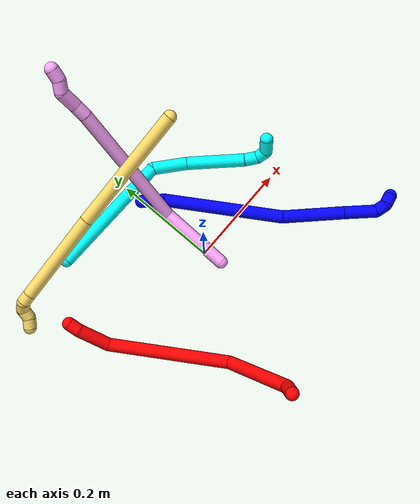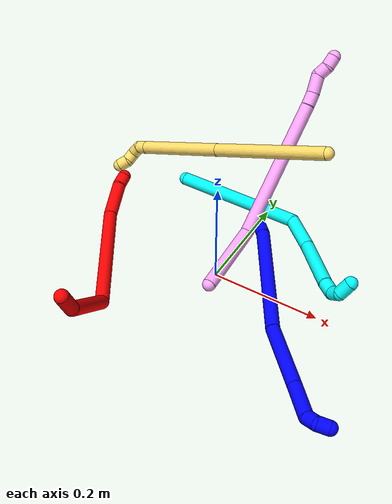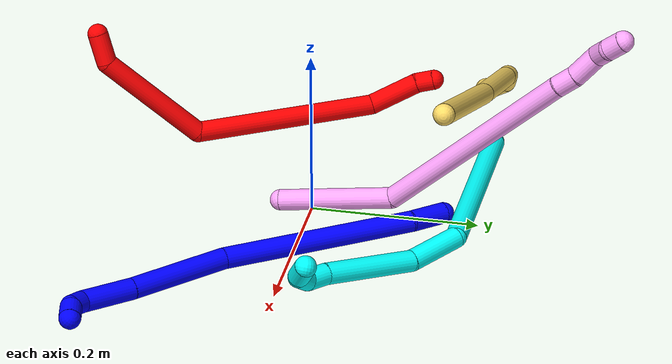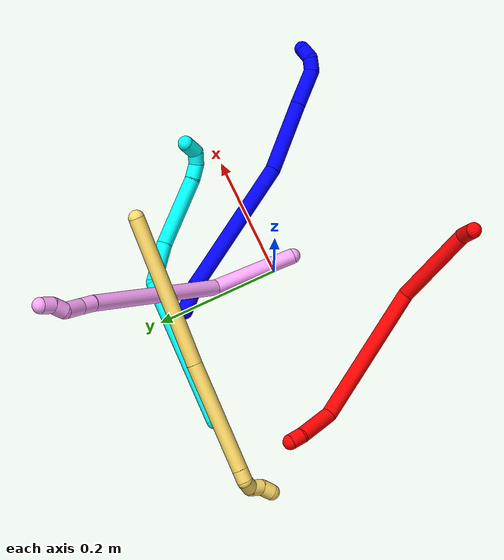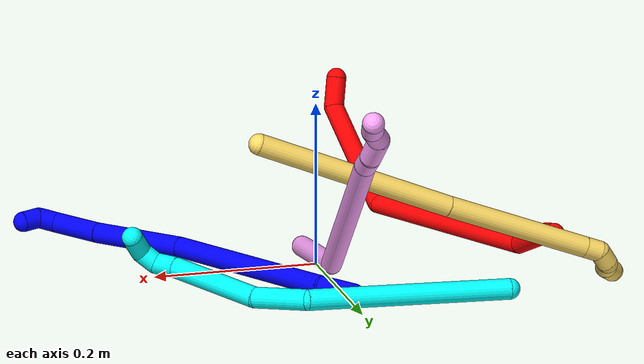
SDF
<sdf version="1.7">
 <world name="default">
  <plugin name="TubeGeneratorPlugin" filename="libtube_generator_plugin.so"/>
  <model name="photoneo_s_sensor">
   <static>1</static>
   <pose>0 0 2 1.57079 1.57079 3.14159</pose>
   <link name="link">
    <inertial><mass>0.1</mass></inertial>
    <sensor name="sensor" type="depth">
     <update_rate>30</update_rate>
     <camera>
      <horizontal_fov>1.22</horizontal_fov>
      <image><width>1920</width><height>1200</height><format>B8G8R8</format></image>
      <clip><near>0.1</near><far>4</far></clip>
      <depth_camera><output>points</output></depth_camera>
     </camera>
     <plugin name="camera_plugin" filename="libgazebo_ros_depth_camera.so">
      <baseline>0.2</baseline>
      <alwaysOn>1</alwaysOn>
      <updateRate>0.0</updateRate>
      <cameraName>camera_ir</cameraName>
      <imageTopicName>/camera/color/image_raw</imageTopicName>
      <cameraInfoTopicName>/camera/color/camera_info</cameraInfoTopicName>
      <depthImageTopicName>/camera/depth/image_raw</depthImageTopicName>
      <depthImageCameraInfoTopicName>/camera/depth/camera_info</depthImageCameraInfoTopicName>
      <pointCloudTopicName>/camera/depth/points</pointCloudTopicName>
      <frameName>fr_optical</frameName>
      <pointCloudCutoff>0.1</pointCloudCutoff>
      <pointCloudCutoffMax>2.0</pointCloudCutoffMax>
      <distortionK1>0</distortionK1>
      <distortionK2>0</distortionK2>
      <distortionK3>0</distortionK3>
      <distortionT1>0</distortionT1>
      <distortionT2>0</distortionT2>
      <CxPrime>0</CxPrime>
      <Cx>0</Cx>
      <Cy>0</Cy>
      <focalLength>0</focalLength>
      <hackBaseline>0</hackBaseline>
     </plugin>
    </sensor>
   </link>
  </model>
  <gravity>0 0 -9.8</gravity>
  <magnetic_field>6e-06 2.3e-05 -4.2e-05</magnetic_field>
  <atmosphere type="adiabatic"/>
  <physics name="default_physics" default="0" type="ode">
   <max_step_size>0.003</max_step_size>
   <real_time_factor>1</real_time_factor>
   <real_time_update_rate>1000</real_time_update_rate>
   <max_contacts>10000</max_contacts>
   <ode>
    <solver>
     <type>quick</type>
     <iters>100</iters>
     <sor>1.3</sor>
     <use_dynamic_moi_rescaling>0</use_dynamic_moi_rescaling>
    </solver>
    <constraints>
     <contact_max_correcting_vel>0</contact_max_correcting_vel>
     <contact_surface_layer>0.001</contact_surface_layer>
     <cfm>0</cfm>
     <erp>0.2</erp>
    </constraints>
   </ode>
  </physics>
  <scene><ambient>0.4 0.4 0.4 1</ambient><background>0.7 0.7 0.7 1</background><shadows>0</shadows></scene>
  <audio><device>default</device></audio>
  <spherical_coordinates>
   <surface_model>EARTH_WGS84</surface_model>
   <latitude_deg>0</latitude_deg>
   <longitude_deg>0</longitude_deg>
   <elevation>0</elevation>
   <heading_deg>0</heading_deg>
  </spherical_coordinates>
  <model name="bin">
   <static>1</static>
   <link name="bottom">
    <collision name="collision-bottom">
     <pose>0 0 -0.01 0 -0 0</pose>
     <geometry><box><size>0.8 0.6 0.02</size></box></geometry>
     <surface>
      <friction><ode><mu>100</mu><mu2>100</mu2></ode></friction>
      <contact><collide_bitmask>65535</collide_bitmask></contact>
     </surface>
    </collision>
   </link>
   <link name="west_wall">
    <collision name="collision-west_wall">
     <pose>-0.41 0 0.1 0 -0 0</pose>
     <geometry><box><size>0.02 0.6 0.2</size></box></geometry>
     <surface>
      <friction><ode><mu>100</mu><mu2>100</mu2></ode></friction>
      <contact><collide_bitmask>65535</collide_bitmask></contact>
     </surface>
    </collision>
   </link>
   <link name="east_wall">
    <collision name="collision-east_wall">
     <pose>0.41 0 0.1 0 -0 0</pose>
     <geometry><box><size>0.02 0.6 0.2</size></box></geometry>
     <surface>
      <friction><ode><mu>100</mu><mu2>100</mu2></ode></friction>
      <contact><collide_bitmask>65535</collide_bitmask></contact>
     </surface>
    </collision>
   </link>
   <link name="south_wall">
    <collision name="collision-south_wall">
     <pose>0 -0.31 0.1 0 -0 0</pose>
     <geometry><box><size>0.8 0.02 0.2</size></box></geometry>
     <surface>
      <friction><ode><mu>100</mu><mu2>100</mu2></ode></friction>
      <contact><collide_bitmask>65535</collide_bitmask></contact>
     </surface>
    </collision>
   </link>
   <link name="north_wall">
    <collision name="collision-north_wall">
     <pose>0 0.31 0.1 0 -0 0</pose>
     <geometry><box><size>0.8 0.02 0.2</size></box></geometry>
     <surface>
      <friction><ode><mu>100</mu><mu2>100</mu2></ode></friction>
      <contact><collide_bitmask>65535</collide_bitmask></contact>
     </surface>
    </collision>
   </link>
  </model>
  <model name="1">
   <static>0</static>
   <link name="1">
    <collision name="collision-cylinder-e_1_1_4">
     <pose>0.014625 -0.016737 -0.002079 1.69438 0.714352 0.799344</pose>
     <geometry><cylinder><radius>0.0125</radius><length>0.044647</length></cylinder></geometry>
     <surface>
      <friction><ode><mu>1.16</mu><mu2>1.16</mu2><slip1>0</slip1><slip2>0</slip2></ode></friction>
      <contact><ode><kp>1e+06</kp><kd>1</kd><max_vel>0</max_vel><min_depth>0.001</min_depth></ode></contact>
     </surface>
    </collision>
    <visual name="visual-cylinder-e_1_1_4">
     <pose>0.014625 -0.016737 -0.002079 1.69438 0.714352 0.799344</pose>
     <geometry><cylinder><radius>0.0125</radius><length>0.044647</length></cylinder></geometry>
     <material><ambient>0 0 1 1</ambient></material>
    </visual>
    <collision name="collision-cylinder-e_2_4_5">
     <pose>0.093287 -0.124477 -0.034724 1.89484 0.588281 0.797476</pose>
     <geometry><cylinder><radius>0.0125</radius><length>0.230795</length></cylinder></geometry>
     <surface>
      <friction><ode><mu>1.16</mu><mu2>1.16</mu2><slip1>0</slip1><slip2>0</slip2></ode></friction>
      <contact><ode><kp>1e+06</kp><kd>1</kd><max_vel>0</max_vel><min_depth>0.001</min_depth></ode></contact>
     </surface>
    </collision>
    <visual name="visual-cylinder-e_2_4_5">
     <pose>0.093287 -0.124477 -0.034724 1.89484 0.588281 0.797476</pose>
     <geometry><cylinder><radius>0.0125</radius><length>0.230795</length></cylinder></geometry>
     <material><ambient>0 0 1 1</ambient></material>
    </visual>
    <collision name="collision-cylinder-e_3_5_6">
     <pose>0.198471 -0.25782 -0.072397 1.7371 0.764148 0.886713</pose>
     <geometry><cylinder><radius>0.0125</radius><length>0.118933</length></cylinder></geometry>
     <surface>
      <friction><ode><mu>1.16</mu><mu2>1.16</mu2><slip1>0</slip1><slip2>0</slip2></ode></friction>
      <contact><ode><kp>1e+06</kp><kd>1</kd><max_vel>0</max_vel><min_depth>0.001</min_depth></ode></contact>
     </surface>
    </collision>
    <visual name="visual-cylinder-e_3_5_6">
     <pose>0.198471 -0.25782 -0.072397 1.7371 0.764148 0.886713</pose>
     <geometry><cylinder><radius>0.0125</radius><length>0.118933</length></cylinder></geometry>
     <material><ambient>0 0 1 1</ambient></material>
    </visual>
    <collision name="collision-cylinder-e_4_6_7">
     <pose>0.260115 -0.323899 -0.082606 1.70072 0.708101 0.797063</pose>
     <geometry><cylinder><radius>0.0125</radius><length>0.063032</length></cylinder></geometry>
     <surface>
      <friction><ode><mu>1.16</mu><mu2>1.16</mu2><slip1>0</slip1><slip2>0</slip2></ode></friction>
      <contact><ode><kp>1e+06</kp><kd>1</kd><max_vel>0</max_vel><min_depth>0.001</min_depth></ode></contact>
     </surface>
    </collision>
    <visual name="visual-cylinder-e_4_6_7">
     <pose>0.260115 -0.323899 -0.082606 1.70072 0.708101 0.797063</pose>
     <geometry><cylinder><radius>0.0125</radius><length>0.063032</length></cylinder></geometry>
     <material><ambient>0 0 1 1</ambient></material>
    </visual>
    <collision name="collision-cylinder-e_5_7_8">
     <pose>0.288475 -0.353495 -0.081347 0.930962 0.822228 0.431151</pose>
     <geometry><cylinder><radius>0.0125</radius><length>0.021463</length></cylinder></geometry>
     <surface>
      <friction><ode><mu>1.16</mu><mu2>1.16</mu2><slip1>0</slip1><slip2>0</slip2></ode></friction>
      <contact><ode><kp>1e+06</kp><kd>1</kd><max_vel>0</max_vel><min_depth>0.001</min_depth></ode></contact>
     </surface>
    </collision>
    <visual name="visual-cylinder-e_5_7_8">
     <pose>0.288475 -0.353495 -0.081347 0.930962 0.822228 0.431151</pose>
     <geometry><cylinder><radius>0.0125</radius><length>0.021463</length></cylinder></geometry>
     <material><ambient>0 0 1 1</ambient></material>
    </visual>
    <collision name="collision-cylinder-e_6_8_2">
     <pose>0.305788 -0.358827 -0.072292 -0.111823 1.10731 -0.069167</pose>
     <geometry><cylinder><radius>0.0125</radius><length>0.021131</length></cylinder></geometry>
     <surface>
      <friction><ode><mu>1.16</mu><mu2>1.16</mu2><slip1>0</slip1><slip2>0</slip2></ode></friction>
      <contact><ode><kp>1e+06</kp><kd>1</kd><max_vel>0</max_vel><min_depth>0.001</min_depth></ode></contact>
     </surface>
    </collision>
    <visual name="visual-cylinder-e_6_8_2">
     <pose>0.305788 -0.358827 -0.072292 -0.111823 1.10731 -0.069167</pose>
     <geometry><cylinder><radius>0.0125</radius><length>0.021131</length></cylinder></geometry>
     <material><ambient>0 0 1 1</ambient></material>
    </visual>
    <collision name="collision-sphere-2">
     <pose>0.315239 -0.3583 -0.067598 0 -0 0</pose>
     <geometry><sphere><radius>0.0125</radius></sphere></geometry>
     <surface>
      <friction><ode><mu>1.16</mu><mu2>1.16</mu2><slip1>0</slip1><slip2>0</slip2></ode></friction>
      <contact><ode><kp>1e+06</kp><kd>1</kd><max_vel>0</max_vel><min_depth>0.001</min_depth></ode></contact>
     </surface>
    </collision>
    <visual name="visual-sphere-2">
     <pose>0.315239 -0.3583 -0.067598 0 -0 0</pose>
     <geometry><sphere><radius>0.0125</radius></sphere></geometry>
     <material><ambient>0 0 1 1</ambient></material>
    </visual>
    <collision name="collision-sphere-4">
     <pose>0.029249 -0.033474 -0.004158 0 -0 0</pose>
     <geometry><sphere><radius>0.0125</radius></sphere></geometry>
     <surface>
      <friction><ode><mu>1.16</mu><mu2>1.16</mu2><slip1>0</slip1><slip2>0</slip2></ode></friction>
      <contact><ode><kp>1e+06</kp><kd>1</kd><max_vel>0</max_vel><min_depth>0.001</min_depth></ode></contact>
     </surface>
    </collision>
    <visual name="visual-sphere-4">
     <pose>0.029249 -0.033474 -0.004158 0 -0 0</pose>
     <geometry><sphere><radius>0.0125</radius></sphere></geometry>
     <material><ambient>0 0 1 1</ambient></material>
    </visual>
    <collision name="collision-sphere-1">
     <geometry><sphere><radius>0.0125</radius></sphere></geometry>
     <surface>
      <friction><ode><mu>1.16</mu><mu2>1.16</mu2><slip1>0</slip1><slip2>0</slip2></ode></friction>
      <contact><ode><kp>1e+06</kp><kd>1</kd><max_vel>0</max_vel><min_depth>0.001</min_depth></ode></contact>
     </surface>
    </collision>
    <visual name="visual-sphere-1">
     <geometry><sphere><radius>0.0125</radius></sphere></geometry>
     <material><ambient>0 0 1 1</ambient></material>
    </visual>
    <collision name="collision-sphere-8">
     <pose>0.296337 -0.359354 -0.076986 0 -0 0</pose>
     <geometry><sphere><radius>0.0125</radius></sphere></geometry>
     <surface>
      <friction><ode><mu>1.16</mu><mu2>1.16</mu2><slip1>0</slip1><slip2>0</slip2></ode></friction>
      <contact><ode><kp>1e+06</kp><kd>1</kd><max_vel>0</max_vel><min_depth>0.001</min_depth></ode></contact>
     </surface>
    </collision>
    <visual name="visual-sphere-8">
     <pose>0.296337 -0.359354 -0.076986 0 -0 0</pose>
     <geometry><sphere><radius>0.0125</radius></sphere></geometry>
     <material><ambient>0 0 1 1</ambient></material>
    </visual>
    <collision name="collision-sphere-5">
     <pose>0.157325 -0.215479 -0.06529 0 -0 0</pose>
     <geometry><sphere><radius>0.0125</radius></sphere></geometry>
     <surface>
      <friction><ode><mu>1.16</mu><mu2>1.16</mu2><slip1>0</slip1><slip2>0</slip2></ode></friction>
      <contact><ode><kp>1e+06</kp><kd>1</kd><max_vel>0</max_vel><min_depth>0.001</min_depth></ode></contact>
     </surface>
    </collision>
    <visual name="visual-sphere-5">
     <pose>0.157325 -0.215479 -0.06529 0 -0 0</pose>
     <geometry><sphere><radius>0.0125</radius></sphere></geometry>
     <material><ambient>0 0 1 1</ambient></material>
    </visual>
    <collision name="collision-sphere-6">
     <pose>0.239617 -0.300161 -0.079504 0 -0 0</pose>
     <geometry><sphere><radius>0.0125</radius></sphere></geometry>
     <surface>
      <friction><ode><mu>1.16</mu><mu2>1.16</mu2><slip1>0</slip1><slip2>0</slip2></ode></friction>
      <contact><ode><kp>1e+06</kp><kd>1</kd><max_vel>0</max_vel><min_depth>0.001</min_depth></ode></contact>
     </surface>
    </collision>
    <visual name="visual-sphere-6">
     <pose>0.239617 -0.300161 -0.079504 0 -0 0</pose>
     <geometry><sphere><radius>0.0125</radius></sphere></geometry>
     <material><ambient>0 0 1 1</ambient></material>
    </visual>
    <collision name="collision-sphere-7">
     <pose>0.280612 -0.347636 -0.085708 0 -0 0</pose>
     <geometry><sphere><radius>0.0125</radius></sphere></geometry>
     <surface>
      <friction><ode><mu>1.16</mu><mu2>1.16</mu2><slip1>0</slip1><slip2>0</slip2></ode></friction>
      <contact><ode><kp>1e+06</kp><kd>1</kd><max_vel>0</max_vel><min_depth>0.001</min_depth></ode></contact>
     </surface>
    </collision>
    <visual name="visual-sphere-7">
     <pose>0.280612 -0.347636 -0.085708 0 -0 0</pose>
     <geometry><sphere><radius>0.0125</radius></sphere></geometry>
     <material><ambient>0 0 1 1</ambient></material>
    </visual>
    <inertial>
     <pose>0.149673 -0.191449 -0.050396 0 -0 0</pose>
     <mass>0.5</mass>
     <inertia>
      <ixx>0.001425</ixx>
      <ixy>0</ixy>
      <ixz>0</ixz>
      <iyy>0.000922</iyy>
      <iyz>0</iyz>
      <izz>0.000241</izz>
     </inertia>
    </inertial>
   </link>
   <pose>-0.001835 0.15817 0.011627 -0.649519 0.456837 -0.101211</pose>
  </model>
  <model name="2">
   <static>0</static>
   <link name="2">
    <collision name="collision-cylinder-e_1_1_4">
     <pose>-0.013848 0.002456 0.012416 -0.195279 -0.830323 0.086296</pose>
     <geometry><cylinder><radius>0.0125</radius><length>0.037522</length></cylinder></geometry>
     <surface>
      <friction><ode><mu>1.16</mu><mu2>1.16</mu2><slip1>0</slip1><slip2>0</slip2></ode></friction>
      <contact><ode><kp>1e+06</kp><kd>1</kd><max_vel>0</max_vel><min_depth>0.001</min_depth></ode></contact>
     </surface>
    </collision>
    <visual name="visual-cylinder-e_1_1_4">
     <pose>-0.013848 0.002456 0.012416 -0.195279 -0.830323 0.086296</pose>
     <geometry><cylinder><radius>0.0125</radius><length>0.037522</length></cylinder></geometry>
     <material><ambient>1 0 0 1</ambient></material>
    </visual>
    <collision name="collision-cylinder-e_2_4_5">
     <pose>-0.074079 0.05345 0.054409 -1.02353 -0.684435 0.394964</pose>
     <geometry><cylinder><radius>0.0125</radius><length>0.146723</length></cylinder></geometry>
     <surface>
      <friction><ode><mu>1.16</mu><mu2>1.16</mu2><slip1>0</slip1><slip2>0</slip2></ode></friction>
      <contact><ode><kp>1e+06</kp><kd>1</kd><max_vel>0</max_vel><min_depth>0.001</min_depth></ode></contact>
     </surface>
    </collision>
    <visual name="visual-cylinder-e_2_4_5">
     <pose>-0.074079 0.05345 0.054409 -1.02353 -0.684435 0.394964</pose>
     <geometry><cylinder><radius>0.0125</radius><length>0.146723</length></cylinder></geometry>
     <material><ambient>1 0 0 1</ambient></material>
    </visual>
    <collision name="collision-cylinder-e_3_5_6">
     <pose>-0.142035 0.214005 0.070373 -1.69172 -0.188911 0.213082</pose>
     <geometry><cylinder><radius>0.0125</radius><length>0.229771</length></cylinder></geometry>
     <surface>
      <friction><ode><mu>1.16</mu><mu2>1.16</mu2><slip1>0</slip1><slip2>0</slip2></ode></friction>
      <contact><ode><kp>1e+06</kp><kd>1</kd><max_vel>0</max_vel><min_depth>0.001</min_depth></ode></contact>
     </surface>
    </collision>
    <visual name="visual-cylinder-e_3_5_6">
     <pose>-0.142035 0.214005 0.070373 -1.69172 -0.188911 0.213082</pose>
     <geometry><cylinder><radius>0.0125</radius><length>0.229771</length></cylinder></geometry>
     <material><ambient>1 0 0 1</ambient></material>
    </visual>
    <collision name="collision-cylinder-e_4_6_7">
     <pose>-0.168705 0.35067 0.036796 -2.25166 -0.159306 0.331704</pose>
     <geometry><cylinder><radius>0.0125</radius><length>0.064253</length></cylinder></geometry>
     <surface>
      <friction><ode><mu>1.16</mu><mu2>1.16</mu2><slip1>0</slip1><slip2>0</slip2></ode></friction>
      <contact><ode><kp>1e+06</kp><kd>1</kd><max_vel>0</max_vel><min_depth>0.001</min_depth></ode></contact>
     </surface>
    </collision>
    <visual name="visual-cylinder-e_4_6_7">
     <pose>-0.168705 0.35067 0.036796 -2.25166 -0.159306 0.331704</pose>
     <geometry><cylinder><radius>0.0125</radius><length>0.064253</length></cylinder></geometry>
     <material><ambient>1 0 0 1</ambient></material>
    </visual>
    <collision name="collision-cylinder-e_5_7_2">
     <pose>-0.17817 0.383511 0.011187 -2.17377 -0.413705 0.759757</pose>
     <geometry><cylinder><radius>0.0125</radius><length>0.021731</length></cylinder></geometry>
     <surface>
      <friction><ode><mu>1.16</mu><mu2>1.16</mu2><slip1>0</slip1><slip2>0</slip2></ode></friction>
      <contact><ode><kp>1e+06</kp><kd>1</kd><max_vel>0</max_vel><min_depth>0.001</min_depth></ode></contact>
     </surface>
    </collision>
    <visual name="visual-cylinder-e_5_7_2">
     <pose>-0.17817 0.383511 0.011187 -2.17377 -0.413705 0.759757</pose>
     <geometry><cylinder><radius>0.0125</radius><length>0.021731</length></cylinder></geometry>
     <material><ambient>1 0 0 1</ambient></material>
    </visual>
    <collision name="collision-sphere-2">
     <pose>-0.182538 0.391706 0.005545 0 -0 0</pose>
     <geometry><sphere><radius>0.0125</radius></sphere></geometry>
     <surface>
      <friction><ode><mu>1.16</mu><mu2>1.16</mu2><slip1>0</slip1><slip2>0</slip2></ode></friction>
      <contact><ode><kp>1e+06</kp><kd>1</kd><max_vel>0</max_vel><min_depth>0.001</min_depth></ode></contact>
     </surface>
    </collision>
    <visual name="visual-sphere-2">
     <pose>-0.182538 0.391706 0.005545 0 -0 0</pose>
     <geometry><sphere><radius>0.0125</radius></sphere></geometry>
     <material><ambient>1 0 0 1</ambient></material>
    </visual>
    <collision name="collision-sphere-7">
     <pose>-0.173802 0.375317 0.016829 0 -0 0</pose>
     <geometry><sphere><radius>0.0125</radius></sphere></geometry>
     <surface>
      <friction><ode><mu>1.16</mu><mu2>1.16</mu2><slip1>0</slip1><slip2>0</slip2></ode></friction>
      <contact><ode><kp>1e+06</kp><kd>1</kd><max_vel>0</max_vel><min_depth>0.001</min_depth></ode></contact>
     </surface>
    </collision>
    <visual name="visual-sphere-7">
     <pose>-0.173802 0.375317 0.016829 0 -0 0</pose>
     <geometry><sphere><radius>0.0125</radius></sphere></geometry>
     <material><ambient>1 0 0 1</ambient></material>
    </visual>
    <collision name="collision-sphere-6">
     <pose>-0.163609 0.326023 0.056762 0 -0 0</pose>
     <geometry><sphere><radius>0.0125</radius></sphere></geometry>
     <surface>
      <friction><ode><mu>1.16</mu><mu2>1.16</mu2><slip1>0</slip1><slip2>0</slip2></ode></friction>
      <contact><ode><kp>1e+06</kp><kd>1</kd><max_vel>0</max_vel><min_depth>0.001</min_depth></ode></contact>
     </surface>
    </collision>
    <visual name="visual-sphere-6">
     <pose>-0.163609 0.326023 0.056762 0 -0 0</pose>
     <geometry><sphere><radius>0.0125</radius></sphere></geometry>
     <material><ambient>1 0 0 1</ambient></material>
    </visual>
    <collision name="collision-sphere-5">
     <pose>-0.120461 0.101987 0.083985 0 -0 0</pose>
     <geometry><sphere><radius>0.0125</radius></sphere></geometry>
     <surface>
      <friction><ode><mu>1.16</mu><mu2>1.16</mu2><slip1>0</slip1><slip2>0</slip2></ode></friction>
      <contact><ode><kp>1e+06</kp><kd>1</kd><max_vel>0</max_vel><min_depth>0.001</min_depth></ode></contact>
     </surface>
    </collision>
    <visual name="visual-sphere-5">
     <pose>-0.120461 0.101987 0.083985 0 -0 0</pose>
     <geometry><sphere><radius>0.0125</radius></sphere></geometry>
     <material><ambient>1 0 0 1</ambient></material>
    </visual>
    <collision name="collision-sphere-1">
     <geometry><sphere><radius>0.0125</radius></sphere></geometry>
     <surface>
      <friction><ode><mu>1.16</mu><mu2>1.16</mu2><slip1>0</slip1><slip2>0</slip2></ode></friction>
      <contact><ode><kp>1e+06</kp><kd>1</kd><max_vel>0</max_vel><min_depth>0.001</min_depth></ode></contact>
     </surface>
    </collision>
    <visual name="visual-sphere-1">
     <geometry><sphere><radius>0.0125</radius></sphere></geometry>
     <material><ambient>1 0 0 1</ambient></material>
    </visual>
    <collision name="collision-sphere-4">
     <pose>-0.027697 0.004912 0.024833 0 -0 0</pose>
     <geometry><sphere><radius>0.0125</radius></sphere></geometry>
     <surface>
      <friction><ode><mu>1.16</mu><mu2>1.16</mu2><slip1>0</slip1><slip2>0</slip2></ode></friction>
      <contact><ode><kp>1e+06</kp><kd>1</kd><max_vel>0</max_vel><min_depth>0.001</min_depth></ode></contact>
     </surface>
    </collision>
    <visual name="visual-sphere-4">
     <pose>-0.027697 0.004912 0.024833 0 -0 0</pose>
     <geometry><sphere><radius>0.0125</radius></sphere></geometry>
     <material><ambient>1 0 0 1</ambient></material>
    </visual>
    <inertial>
     <pose>-0.117472 0.175944 0.054452 0 -0 0</pose>
     <mass>0.5</mass>
     <inertia>
      <ixx>0.001487</ixx>
      <ixy>0</ixy>
      <ixz>0</ixz>
      <iyy>0.000429</iyy>
      <iyz>0</iyz>
      <izz>-0.000822</izz>
     </inertia>
    </inertial>
   </link>
   <pose>-0.106901 -0.288303 0.149662 -3.10202 -0.48771 -2.37771</pose>
  </model>
  <model name="3">
   <static>0</static>
   <link name="3">
    <collision name="collision-cylinder-e_1_1_4">
     <pose>0.105201 0.029309 -0.053768 -2.64253 1.04365 -2.30719</pose>
     <geometry><cylinder><radius>0.0125</radius><length>0.243453</length></cylinder></geometry>
     <surface>
      <friction><ode><mu>1.16</mu><mu2>1.16</mu2><slip1>0</slip1><slip2>0</slip2></ode></friction>
      <contact><ode><kp>1e+06</kp><kd>1</kd><max_vel>0</max_vel><min_depth>0.001</min_depth></ode></contact>
     </surface>
    </collision>
    <visual name="visual-cylinder-e_1_1_4">
     <pose>0.105201 0.029309 -0.053768 -2.64253 1.04365 -2.30719</pose>
     <geometry><cylinder><radius>0.0125</radius><length>0.243453</length></cylinder></geometry>
     <material><ambient>0.003922 1 0.996078 1</ambient></material>
    </visual>
    <collision name="collision-cylinder-e_2_4_5">
     <pose>0.236474 0.045047 -0.124226 2.45893 0.880946 1.84994</pose>
     <geometry><cylinder><radius>0.0125</radius><length>0.0676</length></cylinder></geometry>
     <surface>
      <friction><ode><mu>1.16</mu><mu2>1.16</mu2><slip1>0</slip1><slip2>0</slip2></ode></friction>
      <contact><ode><kp>1e+06</kp><kd>1</kd><max_vel>0</max_vel><min_depth>0.001</min_depth></ode></contact>
     </surface>
    </collision>
    <visual name="visual-cylinder-e_2_4_5">
     <pose>0.236474 0.045047 -0.124226 2.45893 0.880946 1.84994</pose>
     <geometry><cylinder><radius>0.0125</radius><length>0.0676</length></cylinder></geometry>
     <material><ambient>0.003922 1 0.996078 1</ambient></material>
    </visual>
    <collision name="collision-cylinder-e_3_5_6">
     <pose>0.308636 0.000927 -0.154648 1.99321 0.942378 1.3342</pose>
     <geometry><cylinder><radius>0.0125</radius><length>0.113949</length></cylinder></geometry>
     <surface>
      <friction><ode><mu>1.16</mu><mu2>1.16</mu2><slip1>0</slip1><slip2>0</slip2></ode></friction>
      <contact><ode><kp>1e+06</kp><kd>1</kd><max_vel>0</max_vel><min_depth>0.001</min_depth></ode></contact>
     </surface>
    </collision>
    <visual name="visual-cylinder-e_3_5_6">
     <pose>0.308636 0.000927 -0.154648 1.99321 0.942378 1.3342</pose>
     <geometry><cylinder><radius>0.0125</radius><length>0.113949</length></cylinder></geometry>
     <material><ambient>0.003922 1 0.996078 1</ambient></material>
    </visual>
    <collision name="collision-cylinder-e_4_6_7">
     <pose>0.365668 -0.034825 -0.172873 2.28341 1.00986 1.7587</pose>
     <geometry><cylinder><radius>0.0125</radius><length>0.025845</length></cylinder></geometry>
     <surface>
      <friction><ode><mu>1.16</mu><mu2>1.16</mu2><slip1>0</slip1><slip2>0</slip2></ode></friction>
      <contact><ode><kp>1e+06</kp><kd>1</kd><max_vel>0</max_vel><min_depth>0.001</min_depth></ode></contact>
     </surface>
    </collision>
    <visual name="visual-cylinder-e_4_6_7">
     <pose>0.365668 -0.034825 -0.172873 2.28341 1.00986 1.7587</pose>
     <geometry><cylinder><radius>0.0125</radius><length>0.025845</length></cylinder></geometry>
     <material><ambient>0.003922 1 0.996078 1</ambient></material>
    </visual>
    <collision name="collision-cylinder-e_5_7_8">
     <pose>0.386958 -0.040823 -0.175575 0.418159 1.38344 0.347915</pose>
     <geometry><cylinder><radius>0.0125</radius><length>0.021064</length></cylinder></geometry>
     <surface>
      <friction><ode><mu>1.16</mu><mu2>1.16</mu2><slip1>0</slip1><slip2>0</slip2></ode></friction>
      <contact><ode><kp>1e+06</kp><kd>1</kd><max_vel>0</max_vel><min_depth>0.001</min_depth></ode></contact>
     </surface>
    </collision>
    <visual name="visual-cylinder-e_5_7_8">
     <pose>0.386958 -0.040823 -0.175575 0.418159 1.38344 0.347915</pose>
     <geometry><cylinder><radius>0.0125</radius><length>0.021064</length></cylinder></geometry>
     <material><ambient>0.003922 1 0.996078 1</ambient></material>
    </visual>
    <collision name="collision-cylinder-e_6_8_2">
     <pose>0.406745 -0.034275 -0.16642 -0.784201 0.737008 -0.316677</pose>
     <geometry><cylinder><radius>0.0125</radius><length>0.028088</length></cylinder></geometry>
     <surface>
      <friction><ode><mu>1.16</mu><mu2>1.16</mu2><slip1>0</slip1><slip2>0</slip2></ode></friction>
      <contact><ode><kp>1e+06</kp><kd>1</kd><max_vel>0</max_vel><min_depth>0.001</min_depth></ode></contact>
     </surface>
    </collision>
    <visual name="visual-cylinder-e_6_8_2">
     <pose>0.406745 -0.034275 -0.16642 -0.784201 0.737008 -0.316677</pose>
     <geometry><cylinder><radius>0.0125</radius><length>0.028088</length></cylinder></geometry>
     <material><ambient>0.003922 1 0.996078 1</ambient></material>
    </visual>
    <collision name="collision-sphere-2">
     <pose>0.416183 -0.02693 -0.159058 0 -0 0</pose>
     <geometry><sphere><radius>0.0125</radius></sphere></geometry>
     <surface>
      <friction><ode><mu>1.16</mu><mu2>1.16</mu2><slip1>0</slip1><slip2>0</slip2></ode></friction>
      <contact><ode><kp>1e+06</kp><kd>1</kd><max_vel>0</max_vel><min_depth>0.001</min_depth></ode></contact>
     </surface>
    </collision>
    <visual name="visual-sphere-2">
     <pose>0.416183 -0.02693 -0.159058 0 -0 0</pose>
     <geometry><sphere><radius>0.0125</radius></sphere></geometry>
     <material><ambient>0.003922 1 0.996078 1</ambient></material>
    </visual>
    <collision name="collision-sphere-4">
     <pose>0.210403 0.058617 -0.107536 0 -0 0</pose>
     <geometry><sphere><radius>0.0125</radius></sphere></geometry>
     <surface>
      <friction><ode><mu>1.16</mu><mu2>1.16</mu2><slip1>0</slip1><slip2>0</slip2></ode></friction>
      <contact><ode><kp>1e+06</kp><kd>1</kd><max_vel>0</max_vel><min_depth>0.001</min_depth></ode></contact>
     </surface>
    </collision>
    <visual name="visual-sphere-4">
     <pose>0.210403 0.058617 -0.107536 0 -0 0</pose>
     <geometry><sphere><radius>0.0125</radius></sphere></geometry>
     <material><ambient>0.003922 1 0.996078 1</ambient></material>
    </visual>
    <collision name="collision-sphere-1">
     <geometry><sphere><radius>0.0125</radius></sphere></geometry>
     <surface>
      <friction><ode><mu>1.16</mu><mu2>1.16</mu2><slip1>0</slip1><slip2>0</slip2></ode></friction>
      <contact><ode><kp>1e+06</kp><kd>1</kd><max_vel>0</max_vel><min_depth>0.001</min_depth></ode></contact>
     </surface>
    </collision>
    <visual name="visual-sphere-1">
     <geometry><sphere><radius>0.0125</radius></sphere></geometry>
     <material><ambient>0.003922 1 0.996078 1</ambient></material>
    </visual>
    <collision name="collision-sphere-8">
     <pose>0.397306 -0.04162 -0.173783 0 -0 0</pose>
     <geometry><sphere><radius>0.0125</radius></sphere></geometry>
     <surface>
      <friction><ode><mu>1.16</mu><mu2>1.16</mu2><slip1>0</slip1><slip2>0</slip2></ode></friction>
      <contact><ode><kp>1e+06</kp><kd>1</kd><max_vel>0</max_vel><min_depth>0.001</min_depth></ode></contact>
     </surface>
    </collision>
    <visual name="visual-sphere-8">
     <pose>0.397306 -0.04162 -0.173783 0 -0 0</pose>
     <geometry><sphere><radius>0.0125</radius></sphere></geometry>
     <material><ambient>0.003922 1 0.996078 1</ambient></material>
    </visual>
    <collision name="collision-sphere-5">
     <pose>0.262546 0.031476 -0.140917 0 -0 0</pose>
     <geometry><sphere><radius>0.0125</radius></sphere></geometry>
     <surface>
      <friction><ode><mu>1.16</mu><mu2>1.16</mu2><slip1>0</slip1><slip2>0</slip2></ode></friction>
      <contact><ode><kp>1e+06</kp><kd>1</kd><max_vel>0</max_vel><min_depth>0.001</min_depth></ode></contact>
     </surface>
    </collision>
    <visual name="visual-sphere-5">
     <pose>0.262546 0.031476 -0.140917 0 -0 0</pose>
     <geometry><sphere><radius>0.0125</radius></sphere></geometry>
     <material><ambient>0.003922 1 0.996078 1</ambient></material>
    </visual>
    <collision name="collision-sphere-6">
     <pose>0.354726 -0.029623 -0.168379 0 -0 0</pose>
     <geometry><sphere><radius>0.0125</radius></sphere></geometry>
     <surface>
      <friction><ode><mu>1.16</mu><mu2>1.16</mu2><slip1>0</slip1><slip2>0</slip2></ode></friction>
      <contact><ode><kp>1e+06</kp><kd>1</kd><max_vel>0</max_vel><min_depth>0.001</min_depth></ode></contact>
     </surface>
    </collision>
    <visual name="visual-sphere-6">
     <pose>0.354726 -0.029623 -0.168379 0 -0 0</pose>
     <geometry><sphere><radius>0.0125</radius></sphere></geometry>
     <material><ambient>0.003922 1 0.996078 1</ambient></material>
    </visual>
    <collision name="collision-sphere-7">
     <pose>0.37661 -0.040026 -0.177368 0 -0 0</pose>
     <geometry><sphere><radius>0.0125</radius></sphere></geometry>
     <surface>
      <friction><ode><mu>1.16</mu><mu2>1.16</mu2><slip1>0</slip1><slip2>0</slip2></ode></friction>
      <contact><ode><kp>1e+06</kp><kd>1</kd><max_vel>0</max_vel><min_depth>0.001</min_depth></ode></contact>
     </surface>
    </collision>
    <visual name="visual-sphere-7">
     <pose>0.37661 -0.040026 -0.177368 0 -0 0</pose>
     <geometry><sphere><radius>0.0125</radius></sphere></geometry>
     <material><ambient>0.003922 1 0.996078 1</ambient></material>
    </visual>
    <inertial>
     <pose>0.211585 0.015127 -0.103901 0 -0 0</pose>
     <mass>0.5</mass>
     <inertia>
      <ixx>-0.000723</ixx>
      <ixy>0</ixy>
      <ixz>0</ixz>
      <iyy>0.000828</iyy>
      <iyz>0</iyz>
      <izz>-0.001403</izz>
     </inertia>
    </inertial>
   </link>
   <pose>-0.182466 0.190207 0.012453 0.039542 -0.488359 -0.287204</pose>
  </model>
  <model name="4">
   <static>0</static>
   <link name="4">
    <collision name="collision-cylinder-e_1_1_4">
     <pose>0.008885 0.039205 0.055169 -0.617826 0.130529 -0.041709</pose>
     <geometry><cylinder><radius>0.0125</radius><length>0.136523</length></cylinder></geometry>
     <surface>
      <friction><ode><mu>1.16</mu><mu2>1.16</mu2><slip1>0</slip1><slip2>0</slip2></ode></friction>
      <contact><ode><kp>1e+06</kp><kd>1</kd><max_vel>0</max_vel><min_depth>0.001</min_depth></ode></contact>
     </surface>
    </collision>
    <visual name="visual-cylinder-e_1_1_4">
     <pose>0.008885 0.039205 0.055169 -0.617826 0.130529 -0.041709</pose>
     <geometry><cylinder><radius>0.0125</radius><length>0.136523</length></cylinder></geometry>
     <material><ambient>1 0.65098 0.996078 1</ambient></material>
    </visual>
    <collision name="collision-cylinder-e_2_4_5">
     <pose>-0.007611 0.091982 0.236612 -0.107069 -0.197245 0.010604</pose>
     <geometry><cylinder><radius>0.0125</radius><length>0.259024</length></cylinder></geometry>
     <surface>
      <friction><ode><mu>1.16</mu><mu2>1.16</mu2><slip1>0</slip1><slip2>0</slip2></ode></friction>
      <contact><ode><kp>1e+06</kp><kd>1</kd><max_vel>0</max_vel><min_depth>0.001</min_depth></ode></contact>
     </surface>
    </collision>
    <visual name="visual-cylinder-e_2_4_5">
     <pose>-0.007611 0.091982 0.236612 -0.107069 -0.197245 0.010604</pose>
     <geometry><cylinder><radius>0.0125</radius><length>0.259024</length></cylinder></geometry>
     <material><ambient>1 0.65098 0.996078 1</ambient></material>
    </visual>
    <collision name="collision-cylinder-e_3_5_6">
     <pose>-0.035531 0.108249 0.374843 -0.221694 -0.204321 0.02282</pose>
     <geometry><cylinder><radius>0.0125</radius><length>0.025034</length></cylinder></geometry>
     <surface>
      <friction><ode><mu>1.16</mu><mu2>1.16</mu2><slip1>0</slip1><slip2>0</slip2></ode></friction>
      <contact><ode><kp>1e+06</kp><kd>1</kd><max_vel>0</max_vel><min_depth>0.001</min_depth></ode></contact>
     </surface>
    </collision>
    <visual name="visual-cylinder-e_3_5_6">
     <pose>-0.035531 0.108249 0.374843 -0.221694 -0.204321 0.02282</pose>
     <geometry><cylinder><radius>0.0125</radius><length>0.025034</length></cylinder></geometry>
     <material><ambient>1 0.65098 0.996078 1</ambient></material>
    </visual>
    <collision name="collision-cylinder-e_4_6_7">
     <pose>-0.044555 0.112619 0.403238 -0.10155 -0.373978 0.019229</pose>
     <geometry><cylinder><radius>0.0125</radius><length>0.0355</length></cylinder></geometry>
     <surface>
      <friction><ode><mu>1.16</mu><mu2>1.16</mu2><slip1>0</slip1><slip2>0</slip2></ode></friction>
      <contact><ode><kp>1e+06</kp><kd>1</kd><max_vel>0</max_vel><min_depth>0.001</min_depth></ode></contact>
     </surface>
    </collision>
    <visual name="visual-cylinder-e_4_6_7">
     <pose>-0.044555 0.112619 0.403238 -0.10155 -0.373978 0.019229</pose>
     <geometry><cylinder><radius>0.0125</radius><length>0.0355</length></cylinder></geometry>
     <material><ambient>1 0.65098 0.996078 1</ambient></material>
    </visual>
    <collision name="collision-cylinder-e_5_7_8">
     <pose>-0.049438 0.111536 0.43039 0.251973 0.143753 0.018238</pose>
     <geometry><cylinder><radius>0.0125</radius><length>0.022358</length></cylinder></geometry>
     <surface>
      <friction><ode><mu>1.16</mu><mu2>1.16</mu2><slip1>0</slip1><slip2>0</slip2></ode></friction>
      <contact><ode><kp>1e+06</kp><kd>1</kd><max_vel>0</max_vel><min_depth>0.001</min_depth></ode></contact>
     </surface>
    </collision>
    <visual name="visual-cylinder-e_5_7_8">
     <pose>-0.049438 0.111536 0.43039 0.251973 0.143753 0.018238</pose>
     <geometry><cylinder><radius>0.0125</radius><length>0.022358</length></cylinder></geometry>
     <material><ambient>1 0.65098 0.996078 1</ambient></material>
    </visual>
    <collision name="collision-cylinder-e_6_8_2">
     <pose>-0.048649 0.109672 0.451816 -0.083258 -0.075468 0.003145</pose>
     <geometry><cylinder><radius>0.0125</radius><length>0.021561</length></cylinder></geometry>
     <surface>
      <friction><ode><mu>1.16</mu><mu2>1.16</mu2><slip1>0</slip1><slip2>0</slip2></ode></friction>
      <contact><ode><kp>1e+06</kp><kd>1</kd><max_vel>0</max_vel><min_depth>0.001</min_depth></ode></contact>
     </surface>
    </collision>
    <visual name="visual-cylinder-e_6_8_2">
     <pose>-0.048649 0.109672 0.451816 -0.083258 -0.075468 0.003145</pose>
     <geometry><cylinder><radius>0.0125</radius><length>0.021561</length></cylinder></geometry>
     <material><ambient>1 0.65098 0.996078 1</ambient></material>
    </visual>
    <collision name="collision-sphere-2">
     <pose>-0.049462 0.110566 0.462529 0 -0 0</pose>
     <geometry><sphere><radius>0.0125</radius></sphere></geometry>
     <surface>
      <friction><ode><mu>1.16</mu><mu2>1.16</mu2><slip1>0</slip1><slip2>0</slip2></ode></friction>
      <contact><ode><kp>1e+06</kp><kd>1</kd><max_vel>0</max_vel><min_depth>0.001</min_depth></ode></contact>
     </surface>
    </collision>
    <visual name="visual-sphere-2">
     <pose>-0.049462 0.110566 0.462529 0 -0 0</pose>
     <geometry><sphere><radius>0.0125</radius></sphere></geometry>
     <material><ambient>1 0.65098 0.996078 1</ambient></material>
    </visual>
    <collision name="collision-sphere-4">
     <pose>0.01777 0.07841 0.110339 0 -0 0</pose>
     <geometry><sphere><radius>0.0125</radius></sphere></geometry>
     <surface>
      <friction><ode><mu>1.16</mu><mu2>1.16</mu2><slip1>0</slip1><slip2>0</slip2></ode></friction>
      <contact><ode><kp>1e+06</kp><kd>1</kd><max_vel>0</max_vel><min_depth>0.001</min_depth></ode></contact>
     </surface>
    </collision>
    <visual name="visual-sphere-4">
     <pose>0.01777 0.07841 0.110339 0 -0 0</pose>
     <geometry><sphere><radius>0.0125</radius></sphere></geometry>
     <material><ambient>1 0.65098 0.996078 1</ambient></material>
    </visual>
    <collision name="collision-sphere-1">
     <geometry><sphere><radius>0.0125</radius></sphere></geometry>
     <surface>
      <friction><ode><mu>1.16</mu><mu2>1.16</mu2><slip1>0</slip1><slip2>0</slip2></ode></friction>
      <contact><ode><kp>1e+06</kp><kd>1</kd><max_vel>0</max_vel><min_depth>0.001</min_depth></ode></contact>
     </surface>
    </collision>
    <visual name="visual-sphere-1">
     <geometry><sphere><radius>0.0125</radius></sphere></geometry>
     <material><ambient>1 0.65098 0.996078 1</ambient></material>
    </visual>
    <collision name="collision-sphere-8">
     <pose>-0.047836 0.108778 0.441104 0 -0 0</pose>
     <geometry><sphere><radius>0.0125</radius></sphere></geometry>
     <surface>
      <friction><ode><mu>1.16</mu><mu2>1.16</mu2><slip1>0</slip1><slip2>0</slip2></ode></friction>
      <contact><ode><kp>1e+06</kp><kd>1</kd><max_vel>0</max_vel><min_depth>0.001</min_depth></ode></contact>
     </surface>
    </collision>
    <visual name="visual-sphere-8">
     <pose>-0.047836 0.108778 0.441104 0 -0 0</pose>
     <geometry><sphere><radius>0.0125</radius></sphere></geometry>
     <material><ambient>1 0.65098 0.996078 1</ambient></material>
    </visual>
    <collision name="collision-sphere-5">
     <pose>-0.032991 0.105554 0.362886 0 -0 0</pose>
     <geometry><sphere><radius>0.0125</radius></sphere></geometry>
     <surface>
      <friction><ode><mu>1.16</mu><mu2>1.16</mu2><slip1>0</slip1><slip2>0</slip2></ode></friction>
      <contact><ode><kp>1e+06</kp><kd>1</kd><max_vel>0</max_vel><min_depth>0.001</min_depth></ode></contact>
     </surface>
    </collision>
    <visual name="visual-sphere-5">
     <pose>-0.032991 0.105554 0.362886 0 -0 0</pose>
     <geometry><sphere><radius>0.0125</radius></sphere></geometry>
     <material><ambient>1 0.65098 0.996078 1</ambient></material>
    </visual>
    <collision name="collision-sphere-6">
     <pose>-0.03807 0.110944 0.3868 0 -0 0</pose>
     <geometry><sphere><radius>0.0125</radius></sphere></geometry>
     <surface>
      <friction><ode><mu>1.16</mu><mu2>1.16</mu2><slip1>0</slip1><slip2>0</slip2></ode></friction>
      <contact><ode><kp>1e+06</kp><kd>1</kd><max_vel>0</max_vel><min_depth>0.001</min_depth></ode></contact>
     </surface>
    </collision>
    <visual name="visual-sphere-6">
     <pose>-0.03807 0.110944 0.3868 0 -0 0</pose>
     <geometry><sphere><radius>0.0125</radius></sphere></geometry>
     <material><ambient>1 0.65098 0.996078 1</ambient></material>
    </visual>
    <collision name="collision-sphere-7">
     <pose>-0.051039 0.114294 0.419675 0 -0 0</pose>
     <geometry><sphere><radius>0.0125</radius></sphere></geometry>
     <surface>
      <friction><ode><mu>1.16</mu><mu2>1.16</mu2><slip1>0</slip1><slip2>0</slip2></ode></friction>
      <contact><ode><kp>1e+06</kp><kd>1</kd><max_vel>0</max_vel><min_depth>0.001</min_depth></ode></contact>
     </surface>
    </collision>
    <visual name="visual-sphere-7">
     <pose>-0.051039 0.114294 0.419675 0 -0 0</pose>
     <geometry><sphere><radius>0.0125</radius></sphere></geometry>
     <material><ambient>1 0.65098 0.996078 1</ambient></material>
    </visual>
    <inertial>
     <pose>-0.010767 0.081489 0.223766 0 -0 0</pose>
     <mass>0.5</mass>
     <inertia>
      <ixx>0.001658</ixx>
      <ixy>0</ixy>
      <ixz>0</ixz>
      <iyy>0.001654</iyy>
      <iyz>0</iyz>
      <izz>1.7e-05</izz>
     </inertia>
    </inertial>
   </link>
   <pose>0.007411 -0.036388 0.011799 -0.681543 0.620997 0.258104</pose>
  </model>
  <model name="5">
   <static>0</static>
   <link name="5">
    <collision name="collision-cylinder-e_1_1_4">
     <pose>0.003925 0.022191 0.118179 -0.18561 0.032631 -0.003037</pose>
     <geometry><cylinder><radius>0.0125</radius><length>0.240616</length></cylinder></geometry>
     <surface>
      <friction><ode><mu>1.16</mu><mu2>1.16</mu2><slip1>0</slip1><slip2>0</slip2></ode></friction>
      <contact><ode><kp>1e+06</kp><kd>1</kd><max_vel>0</max_vel><min_depth>0.001</min_depth></ode></contact>
     </surface>
    </collision>
    <visual name="visual-cylinder-e_1_1_4">
     <pose>0.003925 0.022191 0.118179 -0.18561 0.032631 -0.003037</pose>
     <geometry><cylinder><radius>0.0125</radius><length>0.240616</length></cylinder></geometry>
     <material><ambient>1 0.858824 0.4 1</ambient></material>
    </visual>
    <collision name="collision-cylinder-e_2_4_5">
     <pose>0.010598 0.057813 0.324597 -0.151063 0.030775 -0.002329</pose>
     <geometry><cylinder><radius>0.0125</radius><length>0.178597</length></cylinder></geometry>
     <surface>
      <friction><ode><mu>1.16</mu><mu2>1.16</mu2><slip1>0</slip1><slip2>0</slip2></ode></friction>
      <contact><ode><kp>1e+06</kp><kd>1</kd><max_vel>0</max_vel><min_depth>0.001</min_depth></ode></contact>
     </surface>
    </collision>
    <visual name="visual-cylinder-e_2_4_5">
     <pose>0.010598 0.057813 0.324597 -0.151063 0.030775 -0.002329</pose>
     <geometry><cylinder><radius>0.0125</radius><length>0.178597</length></cylinder></geometry>
     <material><ambient>1 0.858824 0.4 1</ambient></material>
    </visual>
    <collision name="collision-cylinder-e_3_5_6">
     <pose>0.01363 0.072772 0.422743 -0.152899 0.028326 -0.00217</pose>
     <geometry><cylinder><radius>0.0125</radius><length>0.020054</length></cylinder></geometry>
     <surface>
      <friction><ode><mu>1.16</mu><mu2>1.16</mu2><slip1>0</slip1><slip2>0</slip2></ode></friction>
      <contact><ode><kp>1e+06</kp><kd>1</kd><max_vel>0</max_vel><min_depth>0.001</min_depth></ode></contact>
     </surface>
    </collision>
    <visual name="visual-cylinder-e_3_5_6">
     <pose>0.01363 0.072772 0.422743 -0.152899 0.028326 -0.00217</pose>
     <geometry><cylinder><radius>0.0125</radius><length>0.020054</length></cylinder></geometry>
     <material><ambient>1 0.858824 0.4 1</ambient></material>
    </visual>
    <collision name="collision-cylinder-e_4_6_7">
     <pose>0.008297 0.077528 0.440645 -0.383891 -0.577303 0.115287</pose>
     <geometry><cylinder><radius>0.0125</radius><length>0.020582</length></cylinder></geometry>
     <surface>
      <friction><ode><mu>1.16</mu><mu2>1.16</mu2><slip1>0</slip1><slip2>0</slip2></ode></friction>
      <contact><ode><kp>1e+06</kp><kd>1</kd><max_vel>0</max_vel><min_depth>0.001</min_depth></ode></contact>
     </surface>
    </collision>
    <visual name="visual-cylinder-e_4_6_7">
     <pose>0.008297 0.077528 0.440645 -0.383891 -0.577303 0.115287</pose>
     <geometry><cylinder><radius>0.0125</radius><length>0.020582</length></cylinder></geometry>
     <material><ambient>1 0.858824 0.4 1</ambient></material>
    </visual>
    <collision name="collision-cylinder-e_5_7_8">
     <pose>-0.005751 0.077691 0.453167 0.595451 -0.995498 -0.33043</pose>
     <geometry><cylinder><radius>0.0125</radius><length>0.020099</length></cylinder></geometry>
     <surface>
      <friction><ode><mu>1.16</mu><mu2>1.16</mu2><slip1>0</slip1><slip2>0</slip2></ode></friction>
      <contact><ode><kp>1e+06</kp><kd>1</kd><max_vel>0</max_vel><min_depth>0.001</min_depth></ode></contact>
     </surface>
    </collision>
    <visual name="visual-cylinder-e_5_7_8">
     <pose>-0.005751 0.077691 0.453167 0.595451 -0.995498 -0.33043</pose>
     <geometry><cylinder><radius>0.0125</radius><length>0.020099</length></cylinder></geometry>
     <material><ambient>1 0.858824 0.4 1</ambient></material>
    </visual>
    <collision name="collision-cylinder-e_6_8_2">
     <pose>-0.019426 0.072484 0.465967 0.253146 -0.550267 -0.071814</pose>
     <geometry><cylinder><radius>0.0125</radius><length>0.020051</length></cylinder></geometry>
     <surface>
      <friction><ode><mu>1.16</mu><mu2>1.16</mu2><slip1>0</slip1><slip2>0</slip2></ode></friction>
      <contact><ode><kp>1e+06</kp><kd>1</kd><max_vel>0</max_vel><min_depth>0.001</min_depth></ode></contact>
     </surface>
    </collision>
    <visual name="visual-cylinder-e_6_8_2">
     <pose>-0.019426 0.072484 0.465967 0.253146 -0.550267 -0.071814</pose>
     <geometry><cylinder><radius>0.0125</radius><length>0.020051</length></cylinder></geometry>
     <material><ambient>1 0.858824 0.4 1</ambient></material>
    </visual>
    <collision name="collision-sphere-2">
     <pose>-0.024668 0.070344 0.474241 0 -0 0</pose>
     <geometry><sphere><radius>0.0125</radius></sphere></geometry>
     <surface>
      <friction><ode><mu>1.16</mu><mu2>1.16</mu2><slip1>0</slip1><slip2>0</slip2></ode></friction>
      <contact><ode><kp>1e+06</kp><kd>1</kd><max_vel>0</max_vel><min_depth>0.001</min_depth></ode></contact>
     </surface>
    </collision>
    <visual name="visual-sphere-2">
     <pose>-0.024668 0.070344 0.474241 0 -0 0</pose>
     <geometry><sphere><radius>0.0125</radius></sphere></geometry>
     <material><ambient>1 0.858824 0.4 1</ambient></material>
    </visual>
    <collision name="collision-sphere-4">
     <pose>0.00785 0.044381 0.236357 0 -0 0</pose>
     <geometry><sphere><radius>0.0125</radius></sphere></geometry>
     <surface>
      <friction><ode><mu>1.16</mu><mu2>1.16</mu2><slip1>0</slip1><slip2>0</slip2></ode></friction>
      <contact><ode><kp>1e+06</kp><kd>1</kd><max_vel>0</max_vel><min_depth>0.001</min_depth></ode></contact>
     </surface>
    </collision>
    <visual name="visual-sphere-4">
     <pose>0.00785 0.044381 0.236357 0 -0 0</pose>
     <geometry><sphere><radius>0.0125</radius></sphere></geometry>
     <material><ambient>1 0.858824 0.4 1</ambient></material>
    </visual>
    <collision name="collision-sphere-1">
     <geometry><sphere><radius>0.0125</radius></sphere></geometry>
     <surface>
      <friction><ode><mu>1.16</mu><mu2>1.16</mu2><slip1>0</slip1><slip2>0</slip2></ode></friction>
      <contact><ode><kp>1e+06</kp><kd>1</kd><max_vel>0</max_vel><min_depth>0.001</min_depth></ode></contact>
     </surface>
    </collision>
    <visual name="visual-sphere-1">
     <geometry><sphere><radius>0.0125</radius></sphere></geometry>
     <material><ambient>1 0.858824 0.4 1</ambient></material>
    </visual>
    <collision name="collision-sphere-8">
     <pose>-0.014183 0.074624 0.457694 0 -0 0</pose>
     <geometry><sphere><radius>0.0125</radius></sphere></geometry>
     <surface>
      <friction><ode><mu>1.16</mu><mu2>1.16</mu2><slip1>0</slip1><slip2>0</slip2></ode></friction>
      <contact><ode><kp>1e+06</kp><kd>1</kd><max_vel>0</max_vel><min_depth>0.001</min_depth></ode></contact>
     </surface>
    </collision>
    <visual name="visual-sphere-8">
     <pose>-0.014183 0.074624 0.457694 0 -0 0</pose>
     <geometry><sphere><radius>0.0125</radius></sphere></geometry>
     <material><ambient>1 0.858824 0.4 1</ambient></material>
    </visual>
    <collision name="collision-sphere-5">
     <pose>0.013346 0.071245 0.412837 0 -0 0</pose>
     <geometry><sphere><radius>0.0125</radius></sphere></geometry>
     <surface>
      <friction><ode><mu>1.16</mu><mu2>1.16</mu2><slip1>0</slip1><slip2>0</slip2></ode></friction>
      <contact><ode><kp>1e+06</kp><kd>1</kd><max_vel>0</max_vel><min_depth>0.001</min_depth></ode></contact>
     </surface>
    </collision>
    <visual name="visual-sphere-5">
     <pose>0.013346 0.071245 0.412837 0 -0 0</pose>
     <geometry><sphere><radius>0.0125</radius></sphere></geometry>
     <material><ambient>1 0.858824 0.4 1</ambient></material>
    </visual>
    <collision name="collision-sphere-6">
     <pose>0.013914 0.074298 0.432649 0 -0 0</pose>
     <geometry><sphere><radius>0.0125</radius></sphere></geometry>
     <surface>
      <friction><ode><mu>1.16</mu><mu2>1.16</mu2><slip1>0</slip1><slip2>0</slip2></ode></friction>
      <contact><ode><kp>1e+06</kp><kd>1</kd><max_vel>0</max_vel><min_depth>0.001</min_depth></ode></contact>
     </surface>
    </collision>
    <visual name="visual-sphere-6">
     <pose>0.013914 0.074298 0.432649 0 -0 0</pose>
     <geometry><sphere><radius>0.0125</radius></sphere></geometry>
     <material><ambient>1 0.858824 0.4 1</ambient></material>
    </visual>
    <collision name="collision-sphere-7">
     <pose>0.00268 0.080758 0.448641 0 -0 0</pose>
     <geometry><sphere><radius>0.0125</radius></sphere></geometry>
     <surface>
      <friction><ode><mu>1.16</mu><mu2>1.16</mu2><slip1>0</slip1><slip2>0</slip2></ode></friction>
      <contact><ode><kp>1e+06</kp><kd>1</kd><max_vel>0</max_vel><min_depth>0.001</min_depth></ode></contact>
     </surface>
    </collision>
    <visual name="visual-sphere-7">
     <pose>0.00268 0.080758 0.448641 0 -0 0</pose>
     <geometry><sphere><radius>0.0125</radius></sphere></geometry>
     <material><ambient>1 0.858824 0.4 1</ambient></material>
    </visual>
    <inertial>
     <pose>0.005552 0.043469 0.244813 0 -0 0</pose>
     <mass>0.5</mass>
     <inertia>
      <ixx>0.001649</ixx>
      <ixy>0</ixy>
      <ixz>0</ixz>
      <iyy>0.001633</iyy>
      <iyz>0</iyz>
      <izz>-0.000301</izz>
     </inertia>
    </inertial>
   </link>
   <pose>0.115908 0.175964 0.207295 -1.98562 -0.801413 2.00386</pose>
  </model>
 </world>
</sdf>
